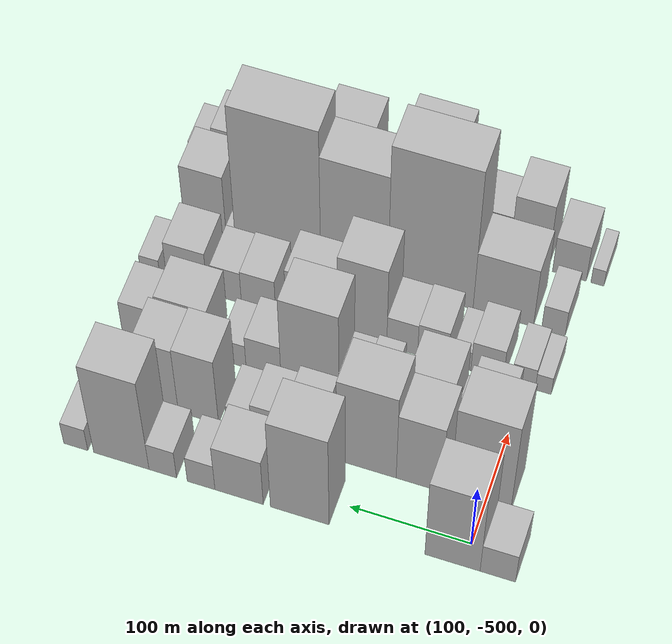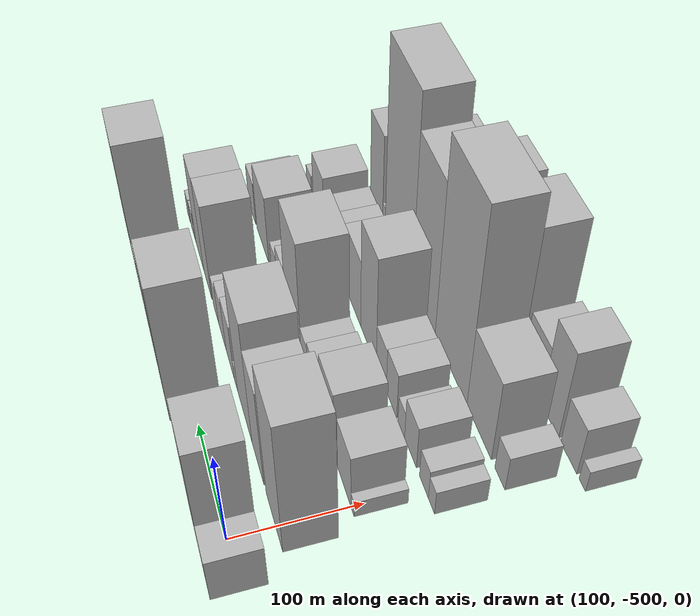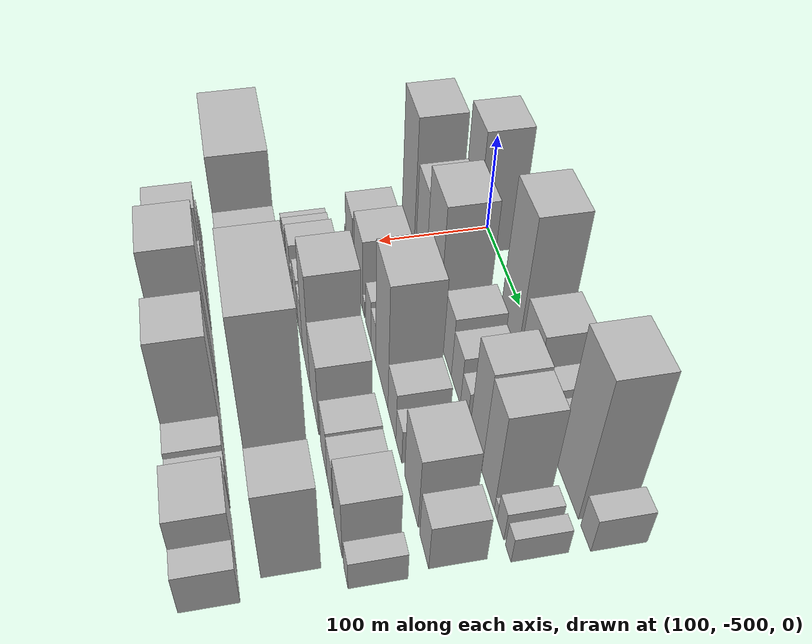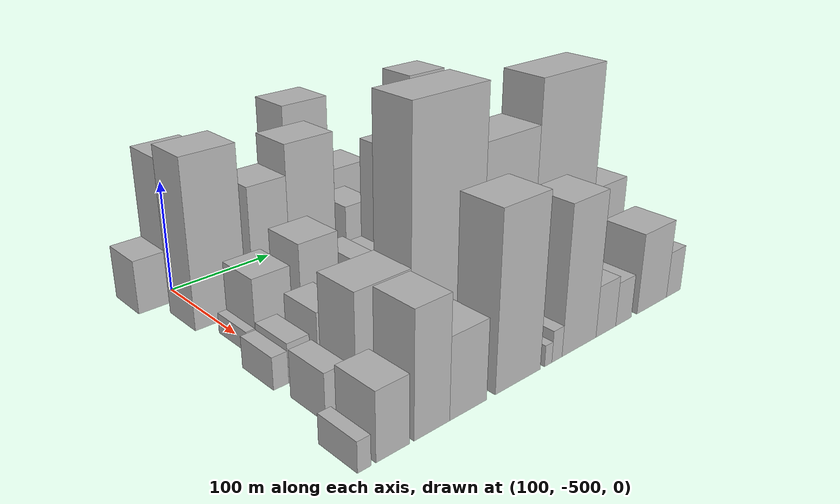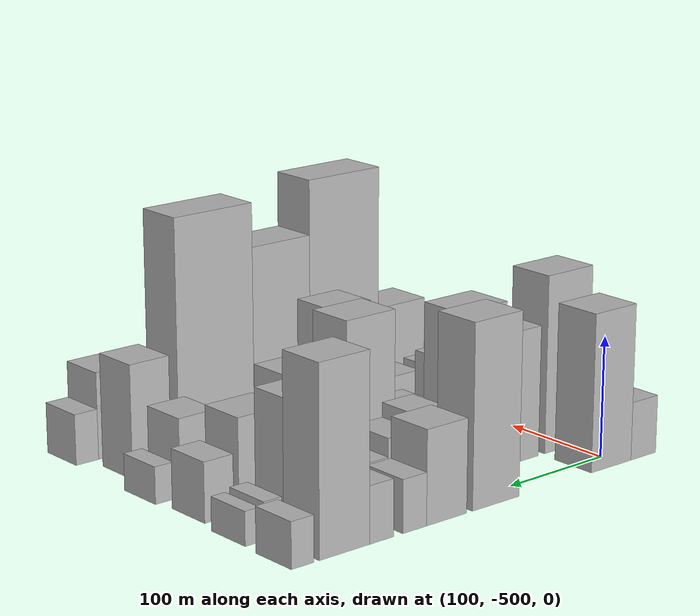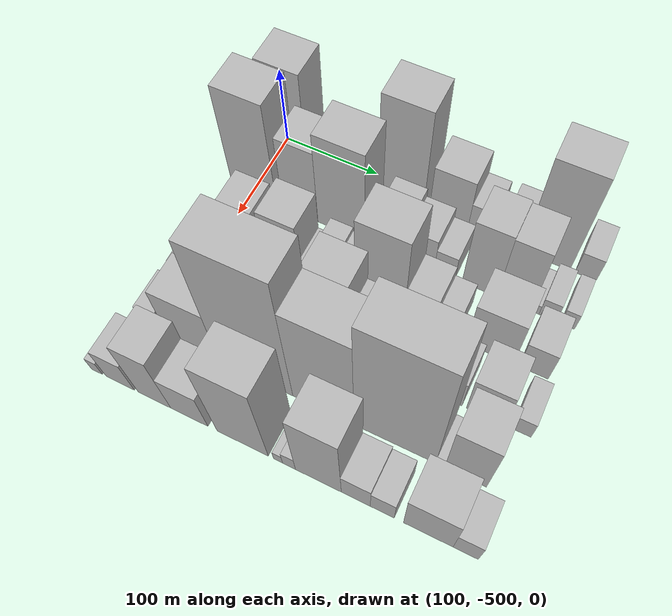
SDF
<sdf version="1.6">
 <world name="default">
  <model name="building_10">
   <static>1</static>
   <pose>100.0000 -527.2935 0 0.000000 0.000000 0.000000</pose>
   <link name="link">
    <pose>0 0 24.00 0 0 0</pose>
    <collision name="collision"><geometry><box><size>40.0000 28.6470 48.0000</size></box></geometry></collision>
    <visual name="visual">
     <cast_shadows>0</cast_shadows>
     <geometry><box><size>40.0000 28.6470 48.0000</size></box></geometry>
     <material>
      <script>
       <uri>model://HANNAS_wall/materials/scripts</uri>
       <uri>model://HANNAS_wall/materials/textures</uri>
       <name>vrc/HANNAS_wall</name>
      </script>
     </material>
    </visual>
   </link>
  </model>
  <model name="building_11">
   <static>1</static>
   <pose>100.0000 -490.5533 0 0.000000 0.000000 0.000000</pose>
   <link name="link">
    <pose>0 0 64.50 0 0 0</pose>
    <collision name="collision"><geometry><box><size>40.0000 44.8334 129.0000</size></box></geometry></collision>
    <visual name="visual">
     <cast_shadows>0</cast_shadows>
     <geometry><box><size>40.0000 44.8334 129.0000</size></box></geometry>
     <material>
      <script>
       <uri>model://HANNAS_wall/materials/scripts</uri>
       <uri>model://HANNAS_wall/materials/textures</uri>
       <name>vrc/HANNAS_wall</name>
      </script>
     </material>
    </visual>
   </link>
  </model>
  <model name="building_12">
   <static>1</static>
   <pose>100.0000 -365.3089 0 0.000000 0.000000 0.000000</pose>
   <link name="link">
    <pose>0 0 73.50 0 0 0</pose>
    <collision name="collision"><geometry><box><size>40.0000 48.5518 147.0000</size></box></geometry></collision>
    <visual name="visual">
     <cast_shadows>0</cast_shadows>
     <geometry><box><size>40.0000 48.5518 147.0000</size></box></geometry>
     <material>
      <script>
       <uri>model://HANNAS_wall/materials/scripts</uri>
       <uri>model://HANNAS_wall/materials/textures</uri>
       <name>vrc/HANNAS_wall</name>
      </script>
     </material>
    </visual>
   </link>
  </model>
  <model name="building_13">
   <static>1</static>
   <pose>100.0000 -314.8790 0 0.000000 0.000000 0.000000</pose>
   <link name="link">
    <pose>0 0 37.50 0 0 0</pose>
    <collision name="collision"><geometry><box><size>40.0000 40.3081 75.0000</size></box></geometry></collision>
    <visual name="visual">
     <cast_shadows>0</cast_shadows>
     <geometry><box><size>40.0000 40.3081 75.0000</size></box></geometry>
     <material>
      <script>
       <uri>model://HANNAS_wall/materials/scripts</uri>
       <uri>model://HANNAS_wall/materials/textures</uri>
       <name>vrc/HANNAS_wall</name>
      </script>
     </material>
    </visual>
   </link>
  </model>
  <model name="building_14">
   <static>1</static>
   <pose>100.0000 -283.0993 0 0.000000 0.000000 0.000000</pose>
   <link name="link">
    <pose>0 0 21.00 0 0 0</pose>
    <collision name="collision"><geometry><box><size>40.0000 23.2512 42.0000</size></box></geometry></collision>
    <visual name="visual">
     <cast_shadows>0</cast_shadows>
     <geometry><box><size>40.0000 23.2512 42.0000</size></box></geometry>
     <material>
      <script>
       <uri>model://HANNAS_wall/materials/scripts</uri>
       <uri>model://HANNAS_wall/materials/textures</uri>
       <name>vrc/HANNAS_wall</name>
      </script>
     </material>
    </visual>
   </link>
  </model>
  <model name="building_15">
   <static>1</static>
   <pose>100.0000 -250.8679 0 0.000000 0.000000 0.000000</pose>
   <link name="link">
    <pose>0 0 22.50 0 0 0</pose>
    <collision name="collision"><geometry><box><size>40.0000 23.2116 45.0000</size></box></geometry></collision>
    <visual name="visual">
     <cast_shadows>0</cast_shadows>
     <geometry><box><size>40.0000 23.2116 45.0000</size></box></geometry>
     <material>
      <script>
       <uri>model://HANNAS_wall/materials/scripts</uri>
       <uri>model://HANNAS_wall/materials/textures</uri>
       <name>vrc/HANNAS_wall</name>
      </script>
     </material>
    </visual>
   </link>
  </model>
  <model name="building_16">
   <static>1</static>
   <pose>100.0000 -215.7812 0 0.000000 0.000000 0.000000</pose>
   <link name="link">
    <pose>0 0 73.50 0 0 0</pose>
    <collision name="collision"><geometry><box><size>40.0000 46.9617 147.0000</size></box></geometry></collision>
    <visual name="visual">
     <cast_shadows>0</cast_shadows>
     <geometry><box><size>40.0000 46.9617 147.0000</size></box></geometry>
     <material>
      <script>
       <uri>model://HANNAS_wall/materials/scripts</uri>
       <uri>model://HANNAS_wall/materials/textures</uri>
       <name>vrc/HANNAS_wall</name>
      </script>
     </material>
    </visual>
   </link>
  </model>
  <model name="building_17">
   <static>1</static>
   <pose>100.0000 -177.0466 0 0.000000 0.000000 0.000000</pose>
   <link name="link">
    <pose>0 0 18.00 0 0 0</pose>
    <collision name="collision"><geometry><box><size>40.0000 20.5076 36.0000</size></box></geometry></collision>
    <visual name="visual">
     <cast_shadows>0</cast_shadows>
     <geometry><box><size>40.0000 20.5076 36.0000</size></box></geometry>
     <material>
      <script>
       <uri>model://HANNAS_wall/materials/scripts</uri>
       <uri>model://HANNAS_wall/materials/textures</uri>
       <name>vrc/HANNAS_wall</name>
      </script>
     </material>
    </visual>
   </link>
  </model>
  <model name="building_66">
   <static>1</static>
   <pose>155.0000 -496.4207 0 0.000000 0.000000 0.000000</pose>
   <link name="link">
    <pose>0 0 73.50 0 0 0</pose>
    <collision name="collision"><geometry><box><size>40.0000 49.2713 147.0000</size></box></geometry></collision>
    <visual name="visual">
     <cast_shadows>0</cast_shadows>
     <geometry><box><size>40.0000 49.2713 147.0000</size></box></geometry>
     <material>
      <script>
       <uri>model://HANNAS_wall/materials/scripts</uri>
       <uri>model://HANNAS_wall/materials/textures</uri>
       <name>vrc/HANNAS_wall</name>
      </script>
     </material>
    </visual>
   </link>
  </model>
  <model name="building_67">
   <static>1</static>
   <pose>155.0000 -445.8310 0 0.000000 0.000000 0.000000</pose>
   <link name="link">
    <pose>0 0 54.00 0 0 0</pose>
    <collision name="collision"><geometry><box><size>40.0000 37.9080 108.0000</size></box></geometry></collision>
    <visual name="visual">
     <cast_shadows>0</cast_shadows>
     <geometry><box><size>40.0000 37.9080 108.0000</size></box></geometry>
     <material>
      <script>
       <uri>model://HANNAS_wall/materials/scripts</uri>
       <uri>model://HANNAS_wall/materials/textures</uri>
       <name>vrc/HANNAS_wall</name>
      </script>
     </material>
    </visual>
   </link>
  </model>
  <model name="building_68">
   <static>1</static>
   <pose>155.0000 -402.1438 0 0.000000 0.000000 0.000000</pose>
   <link name="link">
    <pose>0 0 67.50 0 0 0</pose>
    <collision name="collision"><geometry><box><size>40.0000 49.4666 135.0000</size></box></geometry></collision>
    <visual name="visual">
     <cast_shadows>0</cast_shadows>
     <geometry><box><size>40.0000 49.4666 135.0000</size></box></geometry>
     <material>
      <script>
       <uri>model://HANNAS_wall/materials/scripts</uri>
       <uri>model://HANNAS_wall/materials/textures</uri>
       <name>vrc/HANNAS_wall</name>
      </script>
     </material>
    </visual>
   </link>
  </model>
  <model name="building_69">
   <static>1</static>
   <pose>155.0000 -371.6300 0 0.000000 0.000000 0.000000</pose>
   <link name="link">
    <pose>0 0 12.00 0 0 0</pose>
    <collision name="collision"><geometry><box><size>40.0000 11.5610 24.0000</size></box></geometry></collision>
    <visual name="visual">
     <cast_shadows>0</cast_shadows>
     <geometry><box><size>40.0000 11.5610 24.0000</size></box></geometry>
     <material>
      <script>
       <uri>model://HANNAS_wall/materials/scripts</uri>
       <uri>model://HANNAS_wall/materials/textures</uri>
       <name>vrc/HANNAS_wall</name>
      </script>
     </material>
    </visual>
   </link>
  </model>
  <model name="building_70">
   <static>1</static>
   <pose>155.0000 -350.0865 0 0.000000 0.000000 0.000000</pose>
   <link name="link">
    <pose>0 0 31.50 0 0 0</pose>
    <collision name="collision"><geometry><box><size>40.0000 31.5260 63.0000</size></box></geometry></collision>
    <visual name="visual">
     <cast_shadows>0</cast_shadows>
     <geometry><box><size>40.0000 31.5260 63.0000</size></box></geometry>
     <material>
      <script>
       <uri>model://HANNAS_wall/materials/scripts</uri>
       <uri>model://HANNAS_wall/materials/textures</uri>
       <name>vrc/HANNAS_wall</name>
      </script>
     </material>
    </visual>
   </link>
  </model>
  <model name="building_71">
   <static>1</static>
   <pose>155.0000 -319.9891 0 0.000000 0.000000 0.000000</pose>
   <link name="link">
    <pose>0 0 25.50 0 0 0</pose>
    <collision name="collision"><geometry><box><size>40.0000 28.6688 51.0000</size></box></geometry></collision>
    <visual name="visual">
     <cast_shadows>0</cast_shadows>
     <geometry><box><size>40.0000 28.6688 51.0000</size></box></geometry>
     <material>
      <script>
       <uri>model://HANNAS_wall/materials/scripts</uri>
       <uri>model://HANNAS_wall/materials/textures</uri>
       <name>vrc/HANNAS_wall</name>
      </script>
     </material>
    </visual>
   </link>
  </model>
  <model name="building_72">
   <static>1</static>
   <pose>155.0000 -295.2236 0 0.000000 0.000000 0.000000</pose>
   <link name="link">
    <pose>0 0 18.00 0 0 0</pose>
    <collision name="collision"><geometry><box><size>40.0000 20.8623 36.0000</size></box></geometry></collision>
    <visual name="visual">
     <cast_shadows>0</cast_shadows>
     <geometry><box><size>40.0000 20.8623 36.0000</size></box></geometry>
     <material>
      <script>
       <uri>model://HANNAS_wall/materials/scripts</uri>
       <uri>model://HANNAS_wall/materials/textures</uri>
       <name>vrc/HANNAS_wall</name>
      </script>
     </material>
    </visual>
   </link>
  </model>
  <model name="building_73">
   <static>1</static>
   <pose>155.0000 -260.6465 0 0.000000 0.000000 0.000000</pose>
   <link name="link">
    <pose>0 0 52.50 0 0 0</pose>
    <collision name="collision"><geometry><box><size>40.0000 34.2919 105.0000</size></box></geometry></collision>
    <visual name="visual">
     <cast_shadows>0</cast_shadows>
     <geometry><box><size>40.0000 34.2919 105.0000</size></box></geometry>
     <material>
      <script>
       <uri>model://HANNAS_wall/materials/scripts</uri>
       <uri>model://HANNAS_wall/materials/textures</uri>
       <name>vrc/HANNAS_wall</name>
      </script>
     </material>
    </visual>
   </link>
  </model>
  <model name="building_74">
   <static>1</static>
   <pose>155.0000 -226.7951 0 0.000000 0.000000 0.000000</pose>
   <link name="link">
    <pose>0 0 51.00 0 0 0</pose>
    <collision name="collision"><geometry><box><size>40.0000 33.4109 102.0000</size></box></geometry></collision>
    <visual name="visual">
     <cast_shadows>0</cast_shadows>
     <geometry><box><size>40.0000 33.4109 102.0000</size></box></geometry>
     <material>
      <script>
       <uri>model://HANNAS_wall/materials/scripts</uri>
       <uri>model://HANNAS_wall/materials/textures</uri>
       <name>vrc/HANNAS_wall</name>
      </script>
     </material>
    </visual>
   </link>
  </model>
  <model name="building_75">
   <static>1</static>
   <pose>155.0000 -206.3739 0 0.000000 0.000000 0.000000</pose>
   <link name="link">
    <pose>0 0 7.50 0 0 0</pose>
    <collision name="collision"><geometry><box><size>40.0000 7.4315 15.0000</size></box></geometry></collision>
    <visual name="visual">
     <cast_shadows>0</cast_shadows>
     <geometry><box><size>40.0000 7.4315 15.0000</size></box></geometry>
     <material>
      <script>
       <uri>model://HANNAS_wall/materials/scripts</uri>
       <uri>model://HANNAS_wall/materials/textures</uri>
       <name>vrc/HANNAS_wall</name>
      </script>
     </material>
    </visual>
   </link>
  </model>
  <model name="building_76">
   <static>1</static>
   <pose>155.0000 -194.3846 0 0.000000 0.000000 0.000000</pose>
   <link name="link">
    <pose>0 0 15.00 0 0 0</pose>
    <collision name="collision"><geometry><box><size>40.0000 16.5471 30.0000</size></box></geometry></collision>
    <visual name="visual">
     <cast_shadows>0</cast_shadows>
     <geometry><box><size>40.0000 16.5471 30.0000</size></box></geometry>
     <material>
      <script>
       <uri>model://HANNAS_wall/materials/scripts</uri>
       <uri>model://HANNAS_wall/materials/textures</uri>
       <name>vrc/HANNAS_wall</name>
      </script>
     </material>
    </visual>
   </link>
  </model>
  <model name="building_77">
   <static>1</static>
   <pose>155.0000 -175.4875 0 0.000000 0.000000 0.000000</pose>
   <link name="link">
    <pose>0 0 13.50 0 0 0</pose>
    <collision name="collision"><geometry><box><size>40.0000 13.2470 27.0000</size></box></geometry></collision>
    <visual name="visual">
     <cast_shadows>0</cast_shadows>
     <geometry><box><size>40.0000 13.2470 27.0000</size></box></geometry>
     <material>
      <script>
       <uri>model://HANNAS_wall/materials/scripts</uri>
       <uri>model://HANNAS_wall/materials/textures</uri>
       <name>vrc/HANNAS_wall</name>
      </script>
     </material>
    </visual>
   </link>
  </model>
  <model name="building_114">
   <static>1</static>
   <pose>210.0000 -504.2558 0 0.000000 0.000000 0.000000</pose>
   <link name="link">
    <pose>0 0 9.00 0 0 0</pose>
    <collision name="collision"><geometry><box><size>40.0000 8.2460 18.0000</size></box></geometry></collision>
    <visual name="visual">
     <cast_shadows>0</cast_shadows>
     <geometry><box><size>40.0000 8.2460 18.0000</size></box></geometry>
     <material>
      <script>
       <uri>model://HANNAS_wall/materials/scripts</uri>
       <uri>model://HANNAS_wall/materials/textures</uri>
       <name>vrc/HANNAS_wall</name>
      </script>
     </material>
    </visual>
   </link>
  </model>
  <model name="building_115">
   <static>1</static>
   <pose>210.0000 -482.6817 0 0.000000 0.000000 0.000000</pose>
   <link name="link">
    <pose>0 0 30.00 0 0 0</pose>
    <collision name="collision"><geometry><box><size>40.0000 34.9023 60.0000</size></box></geometry></collision>
    <visual name="visual">
     <cast_shadows>0</cast_shadows>
     <geometry><box><size>40.0000 34.9023 60.0000</size></box></geometry>
     <material>
      <script>
       <uri>model://HANNAS_wall/materials/scripts</uri>
       <uri>model://HANNAS_wall/materials/textures</uri>
       <name>vrc/HANNAS_wall</name>
      </script>
     </material>
    </visual>
   </link>
  </model>
  <model name="building_116">
   <static>1</static>
   <pose>210.0000 -460.8261 0 0.000000 0.000000 0.000000</pose>
   <link name="link">
    <pose>0 0 10.50 0 0 0</pose>
    <collision name="collision"><geometry><box><size>40.0000 8.8088 21.0000</size></box></geometry></collision>
    <visual name="visual">
     <cast_shadows>0</cast_shadows>
     <geometry><box><size>40.0000 8.8088 21.0000</size></box></geometry>
     <material>
      <script>
       <uri>model://HANNAS_wall/materials/scripts</uri>
       <uri>model://HANNAS_wall/materials/textures</uri>
       <name>vrc/HANNAS_wall</name>
      </script>
     </material>
    </visual>
   </link>
  </model>
  <model name="building_117">
   <static>1</static>
   <pose>210.0000 -437.1897 0 0.000000 0.000000 0.000000</pose>
   <link name="link">
    <pose>0 0 37.50 0 0 0</pose>
    <collision name="collision"><geometry><box><size>40.0000 38.4639 75.0000</size></box></geometry></collision>
    <visual name="visual">
     <cast_shadows>0</cast_shadows>
     <geometry><box><size>40.0000 38.4639 75.0000</size></box></geometry>
     <material>
      <script>
       <uri>model://HANNAS_wall/materials/scripts</uri>
       <uri>model://HANNAS_wall/materials/textures</uri>
       <name>vrc/HANNAS_wall</name>
      </script>
     </material>
    </visual>
   </link>
  </model>
  <model name="building_118">
   <static>1</static>
   <pose>210.0000 -413.5424 0 0.000000 0.000000 0.000000</pose>
   <link name="link">
    <pose>0 0 9.00 0 0 0</pose>
    <collision name="collision"><geometry><box><size>40.0000 8.8306 18.0000</size></box></geometry></collision>
    <visual name="visual">
     <cast_shadows>0</cast_shadows>
     <geometry><box><size>40.0000 8.8306 18.0000</size></box></geometry>
     <material>
      <script>
       <uri>model://HANNAS_wall/materials/scripts</uri>
       <uri>model://HANNAS_wall/materials/textures</uri>
       <name>vrc/HANNAS_wall</name>
      </script>
     </material>
    </visual>
   </link>
  </model>
  <model name="building_119">
   <static>1</static>
   <pose>210.0000 -392.7704 0 0.000000 0.000000 0.000000</pose>
   <link name="link">
    <pose>0 0 22.50 0 0 0</pose>
    <collision name="collision"><geometry><box><size>40.0000 22.7132 45.0000</size></box></geometry></collision>
    <visual name="visual">
     <cast_shadows>0</cast_shadows>
     <geometry><box><size>40.0000 22.7132 45.0000</size></box></geometry>
     <material>
      <script>
       <uri>model://HANNAS_wall/materials/scripts</uri>
       <uri>model://HANNAS_wall/materials/textures</uri>
       <name>vrc/HANNAS_wall</name>
      </script>
     </material>
    </visual>
   </link>
  </model>
  <model name="building_120">
   <static>1</static>
   <pose>210.0000 -371.0163 0 0.000000 0.000000 0.000000</pose>
   <link name="link">
    <pose>0 0 19.50 0 0 0</pose>
    <collision name="collision"><geometry><box><size>40.0000 20.7950 39.0000</size></box></geometry></collision>
    <visual name="visual">
     <cast_shadows>0</cast_shadows>
     <geometry><box><size>40.0000 20.7950 39.0000</size></box></geometry>
     <material>
      <script>
       <uri>model://HANNAS_wall/materials/scripts</uri>
       <uri>model://HANNAS_wall/materials/textures</uri>
       <name>vrc/HANNAS_wall</name>
      </script>
     </material>
    </visual>
   </link>
  </model>
  <model name="building_121">
   <static>1</static>
   <pose>210.0000 -335.9780 0 0.000000 0.000000 0.000000</pose>
   <link name="link">
    <pose>0 0 64.50 0 0 0</pose>
    <collision name="collision"><geometry><box><size>40.0000 49.2816 129.0000</size></box></geometry></collision>
    <visual name="visual">
     <cast_shadows>0</cast_shadows>
     <geometry><box><size>40.0000 49.2816 129.0000</size></box></geometry>
     <material>
      <script>
       <uri>model://HANNAS_wall/materials/scripts</uri>
       <uri>model://HANNAS_wall/materials/textures</uri>
       <name>vrc/HANNAS_wall</name>
      </script>
     </material>
    </visual>
   </link>
  </model>
  <model name="building_122">
   <static>1</static>
   <pose>210.0000 -296.3959 0 0.000000 0.000000 0.000000</pose>
   <link name="link">
    <pose>0 0 25.50 0 0 0</pose>
    <collision name="collision"><geometry><box><size>40.0000 29.8825 51.0000</size></box></geometry></collision>
    <visual name="visual">
     <cast_shadows>0</cast_shadows>
     <geometry><box><size>40.0000 29.8825 51.0000</size></box></geometry>
     <material>
      <script>
       <uri>model://HANNAS_wall/materials/scripts</uri>
       <uri>model://HANNAS_wall/materials/textures</uri>
       <name>vrc/HANNAS_wall</name>
      </script>
     </material>
    </visual>
   </link>
  </model>
  <model name="building_123">
   <static>1</static>
   <pose>210.0000 -271.0802 0 0.000000 0.000000 0.000000</pose>
   <link name="link">
    <pose>0 0 18.00 0 0 0</pose>
    <collision name="collision"><geometry><box><size>40.0000 20.7490 36.0000</size></box></geometry></collision>
    <visual name="visual">
     <cast_shadows>0</cast_shadows>
     <geometry><box><size>40.0000 20.7490 36.0000</size></box></geometry>
     <material>
      <script>
       <uri>model://HANNAS_wall/materials/scripts</uri>
       <uri>model://HANNAS_wall/materials/textures</uri>
       <name>vrc/HANNAS_wall</name>
      </script>
     </material>
    </visual>
   </link>
  </model>
  <model name="building_124">
   <static>1</static>
   <pose>210.0000 -228.4498 0 0.000000 0.000000 0.000000</pose>
   <link name="link">
    <pose>0 0 37.50 0 0 0</pose>
    <collision name="collision"><geometry><box><size>40.0000 44.5117 75.0000</size></box></geometry></collision>
    <visual name="visual">
     <cast_shadows>0</cast_shadows>
     <geometry><box><size>40.0000 44.5117 75.0000</size></box></geometry>
     <material>
      <script>
       <uri>model://HANNAS_wall/materials/scripts</uri>
       <uri>model://HANNAS_wall/materials/textures</uri>
       <name>vrc/HANNAS_wall</name>
      </script>
     </material>
    </visual>
   </link>
  </model>
  <model name="building_125">
   <static>1</static>
   <pose>210.0000 -187.6544 0 0.000000 0.000000 0.000000</pose>
   <link name="link">
    <pose>0 0 24.00 0 0 0</pose>
    <collision name="collision"><geometry><box><size>40.0000 27.0791 48.0000</size></box></geometry></collision>
    <visual name="visual">
     <cast_shadows>0</cast_shadows>
     <geometry><box><size>40.0000 27.0791 48.0000</size></box></geometry>
     <material>
      <script>
       <uri>model://HANNAS_wall/materials/scripts</uri>
       <uri>model://HANNAS_wall/materials/textures</uri>
       <name>vrc/HANNAS_wall</name>
      </script>
     </material>
    </visual>
   </link>
  </model>
  <model name="building_166">
   <static>1</static>
   <pose>265.0000 -515.6329 0 0.000000 0.000000 0.000000</pose>
   <link name="link">
    <pose>0 0 13.50 0 0 0</pose>
    <collision name="collision"><geometry><box><size>40.0000 13.4063 27.0000</size></box></geometry></collision>
    <visual name="visual">
     <cast_shadows>0</cast_shadows>
     <geometry><box><size>40.0000 13.4063 27.0000</size></box></geometry>
     <material>
      <script>
       <uri>model://HANNAS_wall/materials/scripts</uri>
       <uri>model://HANNAS_wall/materials/textures</uri>
       <name>vrc/HANNAS_wall</name>
      </script>
     </material>
    </visual>
   </link>
  </model>
  <model name="building_167">
   <static>1</static>
   <pose>265.0000 -499.0594 0 0.000000 0.000000 0.000000</pose>
   <link name="link">
    <pose>0 0 16.50 0 0 0</pose>
    <collision name="collision"><geometry><box><size>40.0000 19.7409 33.0000</size></box></geometry></collision>
    <visual name="visual">
     <cast_shadows>0</cast_shadows>
     <geometry><box><size>40.0000 19.7409 33.0000</size></box></geometry>
     <material>
      <script>
       <uri>model://HANNAS_wall/materials/scripts</uri>
       <uri>model://HANNAS_wall/materials/textures</uri>
       <name>vrc/HANNAS_wall</name>
      </script>
     </material>
    </visual>
   </link>
  </model>
  <model name="building_168">
   <static>1</static>
   <pose>265.0000 -468.4308 0 0.000000 0.000000 0.000000</pose>
   <link name="link">
    <pose>0 0 24.00 0 0 0</pose>
    <collision name="collision"><geometry><box><size>40.0000 27.5163 48.0000</size></box></geometry></collision>
    <visual name="visual">
     <cast_shadows>0</cast_shadows>
     <geometry><box><size>40.0000 27.5163 48.0000</size></box></geometry>
     <material>
      <script>
       <uri>model://HANNAS_wall/materials/scripts</uri>
       <uri>model://HANNAS_wall/materials/textures</uri>
       <name>vrc/HANNAS_wall</name>
      </script>
     </material>
    </visual>
   </link>
  </model>
  <model name="building_169">
   <static>1</static>
   <pose>265.0000 -446.6884 0 0.000000 0.000000 0.000000</pose>
   <link name="link">
    <pose>0 0 15.00 0 0 0</pose>
    <collision name="collision"><geometry><box><size>40.0000 15.9685 30.0000</size></box></geometry></collision>
    <visual name="visual">
     <cast_shadows>0</cast_shadows>
     <geometry><box><size>40.0000 15.9685 30.0000</size></box></geometry>
     <material>
      <script>
       <uri>model://HANNAS_wall/materials/scripts</uri>
       <uri>model://HANNAS_wall/materials/textures</uri>
       <name>vrc/HANNAS_wall</name>
      </script>
     </material>
    </visual>
   </link>
  </model>
  <model name="building_170">
   <static>1</static>
   <pose>265.0000 -422.5773 0 0.000000 0.000000 0.000000</pose>
   <link name="link">
    <pose>0 0 25.50 0 0 0</pose>
    <collision name="collision"><geometry><box><size>40.0000 26.2536 51.0000</size></box></geometry></collision>
    <visual name="visual">
     <cast_shadows>0</cast_shadows>
     <geometry><box><size>40.0000 26.2536 51.0000</size></box></geometry>
     <material>
      <script>
       <uri>model://HANNAS_wall/materials/scripts</uri>
       <uri>model://HANNAS_wall/materials/textures</uri>
       <name>vrc/HANNAS_wall</name>
      </script>
     </material>
    </visual>
   </link>
  </model>
  <model name="building_171">
   <static>1</static>
   <pose>265.0000 -396.2969 0 0.000000 0.000000 0.000000</pose>
   <link name="link">
    <pose>0 0 24.00 0 0 0</pose>
    <collision name="collision"><geometry><box><size>40.0000 26.3074 48.0000</size></box></geometry></collision>
    <visual name="visual">
     <cast_shadows>0</cast_shadows>
     <geometry><box><size>40.0000 26.3074 48.0000</size></box></geometry>
     <material>
      <script>
       <uri>model://HANNAS_wall/materials/scripts</uri>
       <uri>model://HANNAS_wall/materials/textures</uri>
       <name>vrc/HANNAS_wall</name>
      </script>
     </material>
    </visual>
   </link>
  </model>
  <model name="building_172">
   <static>1</static>
   <pose>265.0000 -362.0886 0 0.000000 0.000000 0.000000</pose>
   <link name="link">
    <pose>0 0 60.00 0 0 0</pose>
    <collision name="collision"><geometry><box><size>40.0000 42.1091 120.0000</size></box></geometry></collision>
    <visual name="visual">
     <cast_shadows>0</cast_shadows>
     <geometry><box><size>40.0000 42.1091 120.0000</size></box></geometry>
     <material>
      <script>
       <uri>model://HANNAS_wall/materials/scripts</uri>
       <uri>model://HANNAS_wall/materials/textures</uri>
       <name>vrc/HANNAS_wall</name>
      </script>
     </material>
    </visual>
   </link>
  </model>
  <model name="building_173">
   <static>1</static>
   <pose>265.0000 -318.7486 0 0.000000 0.000000 0.000000</pose>
   <link name="link">
    <pose>0 0 37.50 0 0 0</pose>
    <collision name="collision"><geometry><box><size>40.0000 44.5710 75.0000</size></box></geometry></collision>
    <visual name="visual">
     <cast_shadows>0</cast_shadows>
     <geometry><box><size>40.0000 44.5710 75.0000</size></box></geometry>
     <material>
      <script>
       <uri>model://HANNAS_wall/materials/scripts</uri>
       <uri>model://HANNAS_wall/materials/textures</uri>
       <name>vrc/HANNAS_wall</name>
      </script>
     </material>
    </visual>
   </link>
  </model>
  <model name="building_174">
   <static>1</static>
   <pose>265.0000 -272.6235 0 0.000000 0.000000 0.000000</pose>
   <link name="link">
    <pose>0 0 25.50 0 0 0</pose>
    <collision name="collision"><geometry><box><size>40.0000 29.6791 51.0000</size></box></geometry></collision>
    <visual name="visual">
     <cast_shadows>0</cast_shadows>
     <geometry><box><size>40.0000 29.6791 51.0000</size></box></geometry>
     <material>
      <script>
       <uri>model://HANNAS_wall/materials/scripts</uri>
       <uri>model://HANNAS_wall/materials/textures</uri>
       <name>vrc/HANNAS_wall</name>
      </script>
     </material>
    </visual>
   </link>
  </model>
  <model name="building_175">
   <static>1</static>
   <pose>265.0000 -244.9234 0 0.000000 0.000000 0.000000</pose>
   <link name="link">
    <pose>0 0 24.00 0 0 0</pose>
    <collision name="collision"><geometry><box><size>40.0000 25.7212 48.0000</size></box></geometry></collision>
    <visual name="visual">
     <cast_shadows>0</cast_shadows>
     <geometry><box><size>40.0000 25.7212 48.0000</size></box></geometry>
     <material>
      <script>
       <uri>model://HANNAS_wall/materials/scripts</uri>
       <uri>model://HANNAS_wall/materials/textures</uri>
       <name>vrc/HANNAS_wall</name>
      </script>
     </material>
    </visual>
   </link>
  </model>
  <model name="building_176">
   <static>1</static>
   <pose>265.0000 -210.3490 0 0.000000 0.000000 0.000000</pose>
   <link name="link">
    <pose>0 0 31.50 0 0 0</pose>
    <collision name="collision"><geometry><box><size>40.0000 35.4276 63.0000</size></box></geometry></collision>
    <visual name="visual">
     <cast_shadows>0</cast_shadows>
     <geometry><box><size>40.0000 35.4276 63.0000</size></box></geometry>
     <material>
      <script>
       <uri>model://HANNAS_wall/materials/scripts</uri>
       <uri>model://HANNAS_wall/materials/textures</uri>
       <name>vrc/HANNAS_wall</name>
      </script>
     </material>
    </visual>
   </link>
  </model>
  <model name="building_177">
   <static>1</static>
   <pose>265.0000 -178.0831 0 0.000000 0.000000 0.000000</pose>
   <link name="link">
    <pose>0 0 15.00 0 0 0</pose>
    <collision name="collision"><geometry><box><size>40.0000 17.1041 30.0000</size></box></geometry></collision>
    <visual name="visual">
     <cast_shadows>0</cast_shadows>
     <geometry><box><size>40.0000 17.1041 30.0000</size></box></geometry>
     <material>
      <script>
       <uri>model://HANNAS_wall/materials/scripts</uri>
       <uri>model://HANNAS_wall/materials/textures</uri>
       <name>vrc/HANNAS_wall</name>
      </script>
     </material>
    </visual>
   </link>
  </model>
  <model name="building_222">
   <static>1</static>
   <pose>320.0000 -508.0908 0 0.000000 0.000000 0.000000</pose>
   <link name="link">
    <pose>0 0 19.50 0 0 0</pose>
    <collision name="collision"><geometry><box><size>40.0000 20.0113 39.0000</size></box></geometry></collision>
    <visual name="visual">
     <cast_shadows>0</cast_shadows>
     <geometry><box><size>40.0000 20.0113 39.0000</size></box></geometry>
     <material>
      <script>
       <uri>model://HANNAS_wall/materials/scripts</uri>
       <uri>model://HANNAS_wall/materials/textures</uri>
       <name>vrc/HANNAS_wall</name>
      </script>
     </material>
    </visual>
   </link>
  </model>
  <model name="building_223">
   <static>1</static>
   <pose>320.0000 -465.3262 0 0.000000 0.000000 0.000000</pose>
   <link name="link">
    <pose>0 0 45.00 0 0 0</pose>
    <collision name="collision"><geometry><box><size>40.0000 51.5178 90.0000</size></box></geometry></collision>
    <visual name="visual">
     <cast_shadows>0</cast_shadows>
     <geometry><box><size>40.0000 51.5178 90.0000</size></box></geometry>
     <material>
      <script>
       <uri>model://HANNAS_wall/materials/scripts</uri>
       <uri>model://HANNAS_wall/materials/textures</uri>
       <name>vrc/HANNAS_wall</name>
      </script>
     </material>
    </visual>
   </link>
  </model>
  <model name="building_224">
   <static>1</static>
   <pose>320.0000 -402.8478 0 0.000000 0.000000 0.000000</pose>
   <link name="link">
    <pose>0 0 105.00 0 0 0</pose>
    <collision name="collision"><geometry><box><size>40.0000 73.4390 210.0000</size></box></geometry></collision>
    <visual name="visual">
     <cast_shadows>0</cast_shadows>
     <geometry><box><size>40.0000 73.4390 210.0000</size></box></geometry>
     <material>
      <script>
       <uri>model://HANNAS_wall/materials/scripts</uri>
       <uri>model://HANNAS_wall/materials/textures</uri>
       <name>vrc/HANNAS_wall</name>
      </script>
     </material>
    </visual>
   </link>
  </model>
  <model name="building_225">
   <static>1</static>
   <pose>320.0000 -336.9917 0 0.000000 0.000000 0.000000</pose>
   <link name="link">
    <pose>0 0 82.50 0 0 0</pose>
    <collision name="collision"><geometry><box><size>40.0000 58.2732 165.0000</size></box></geometry></collision>
    <visual name="visual">
     <cast_shadows>0</cast_shadows>
     <geometry><box><size>40.0000 58.2732 165.0000</size></box></geometry>
     <material>
      <script>
       <uri>model://HANNAS_wall/materials/scripts</uri>
       <uri>model://HANNAS_wall/materials/textures</uri>
       <name>vrc/HANNAS_wall</name>
      </script>
     </material>
    </visual>
   </link>
  </model>
  <model name="building_226">
   <static>1</static>
   <pose>320.0000 -270.2323 0 0.000000 0.000000 0.000000</pose>
   <link name="link">
    <pose>0 0 100.50 0 0 0</pose>
    <collision name="collision"><geometry><box><size>40.0000 75.2456 201.0000</size></box></geometry></collision>
    <visual name="visual">
     <cast_shadows>0</cast_shadows>
     <geometry><box><size>40.0000 75.2456 201.0000</size></box></geometry>
     <material>
      <script>
       <uri>model://HANNAS_wall/materials/scripts</uri>
       <uri>model://HANNAS_wall/materials/textures</uri>
       <name>vrc/HANNAS_wall</name>
      </script>
     </material>
    </visual>
   </link>
  </model>
  <model name="building_227">
   <static>1</static>
   <pose>320.0000 -228.6794 0 0.000000 0.000000 0.000000</pose>
   <link name="link">
    <pose>0 0 9.00 0 0 0</pose>
    <collision name="collision"><geometry><box><size>40.0000 7.8602 18.0000</size></box></geometry></collision>
    <visual name="visual">
     <cast_shadows>0</cast_shadows>
     <geometry><box><size>40.0000 7.8602 18.0000</size></box></geometry>
     <material>
      <script>
       <uri>model://HANNAS_wall/materials/scripts</uri>
       <uri>model://HANNAS_wall/materials/textures</uri>
       <name>vrc/HANNAS_wall</name>
      </script>
     </material>
    </visual>
   </link>
  </model>
  <model name="building_228">
   <static>1</static>
   <pose>320.0000 -206.2473 0 0.000000 0.000000 0.000000</pose>
   <link name="link">
    <pose>0 0 46.50 0 0 0</pose>
    <collision name="collision"><geometry><box><size>40.0000 37.0041 93.0000</size></box></geometry></collision>
    <visual name="visual">
     <cast_shadows>0</cast_shadows>
     <geometry><box><size>40.0000 37.0041 93.0000</size></box></geometry>
     <material>
      <script>
       <uri>model://HANNAS_wall/materials/scripts</uri>
       <uri>model://HANNAS_wall/materials/textures</uri>
       <name>vrc/HANNAS_wall</name>
      </script>
     </material>
    </visual>
   </link>
  </model>
  <model name="building_271">
   <static>1</static>
   <pose>375.0000 -529.9291 0 0.000000 0.000000 0.000000</pose>
   <link name="link">
    <pose>0 0 12.00 0 0 0</pose>
    <collision name="collision"><geometry><box><size>40.0000 11.1698 24.0000</size></box></geometry></collision>
    <visual name="visual">
     <cast_shadows>0</cast_shadows>
     <geometry><box><size>40.0000 11.1698 24.0000</size></box></geometry>
     <material>
      <script>
       <uri>model://HANNAS_wall/materials/scripts</uri>
       <uri>model://HANNAS_wall/materials/textures</uri>
       <name>vrc/HANNAS_wall</name>
      </script>
     </material>
    </visual>
   </link>
  </model>
  <model name="building_272">
   <static>1</static>
   <pose>375.0000 -505.8459 0 0.000000 0.000000 0.000000</pose>
   <link name="link">
    <pose>0 0 27.00 0 0 0</pose>
    <collision name="collision"><geometry><box><size>40.0000 28.9966 54.0000</size></box></geometry></collision>
    <visual name="visual">
     <cast_shadows>0</cast_shadows>
     <geometry><box><size>40.0000 28.9966 54.0000</size></box></geometry>
     <material>
      <script>
       <uri>model://HANNAS_wall/materials/scripts</uri>
       <uri>model://HANNAS_wall/materials/textures</uri>
       <name>vrc/HANNAS_wall</name>
      </script>
     </material>
    </visual>
   </link>
  </model>
  <model name="building_273">
   <static>1</static>
   <pose>375.0000 -470.8540 0 0.000000 0.000000 0.000000</pose>
   <link name="link">
    <pose>0 0 49.50 0 0 0</pose>
    <collision name="collision"><geometry><box><size>40.0000 32.9873 99.0000</size></box></geometry></collision>
    <visual name="visual">
     <cast_shadows>0</cast_shadows>
     <geometry><box><size>40.0000 32.9873 99.0000</size></box></geometry>
     <material>
      <script>
       <uri>model://HANNAS_wall/materials/scripts</uri>
       <uri>model://HANNAS_wall/materials/textures</uri>
       <name>vrc/HANNAS_wall</name>
      </script>
     </material>
    </visual>
   </link>
  </model>
  <model name="building_274">
   <static>1</static>
   <pose>375.0000 -436.0719 0 0.000000 0.000000 0.000000</pose>
   <link name="link">
    <pose>0 0 33.00 0 0 0</pose>
    <collision name="collision"><geometry><box><size>40.0000 36.5768 66.0000</size></box></geometry></collision>
    <visual name="visual">
     <cast_shadows>0</cast_shadows>
     <geometry><box><size>40.0000 36.5768 66.0000</size></box></geometry>
     <material>
      <script>
       <uri>model://HANNAS_wall/materials/scripts</uri>
       <uri>model://HANNAS_wall/materials/textures</uri>
       <name>vrc/HANNAS_wall</name>
      </script>
     </material>
    </visual>
   </link>
  </model>
  <model name="building_275">
   <static>1</static>
   <pose>375.0000 -384.2632 0 0.000000 0.000000 0.000000</pose>
   <link name="link">
    <pose>0 0 72.00 0 0 0</pose>
    <collision name="collision"><geometry><box><size>40.0000 49.0407 144.0000</size></box></geometry></collision>
    <visual name="visual">
     <cast_shadows>0</cast_shadows>
     <geometry><box><size>40.0000 49.0407 144.0000</size></box></geometry>
     <material>
      <script>
       <uri>model://HANNAS_wall/materials/scripts</uri>
       <uri>model://HANNAS_wall/materials/textures</uri>
       <name>vrc/HANNAS_wall</name>
      </script>
     </material>
    </visual>
   </link>
  </model>
  <model name="building_276">
   <static>1</static>
   <pose>375.0000 -350.4948 0 0.000000 0.000000 0.000000</pose>
   <link name="link">
    <pose>0 0 9.00 0 0 0</pose>
    <collision name="collision"><geometry><box><size>40.0000 8.4960 18.0000</size></box></geometry></collision>
    <visual name="visual">
     <cast_shadows>0</cast_shadows>
     <geometry><box><size>40.0000 8.4960 18.0000</size></box></geometry>
     <material>
      <script>
       <uri>model://HANNAS_wall/materials/scripts</uri>
       <uri>model://HANNAS_wall/materials/textures</uri>
       <name>vrc/HANNAS_wall</name>
      </script>
     </material>
    </visual>
   </link>
  </model>
  <model name="building_277">
   <static>1</static>
   <pose>375.0000 -340.2466 0 0.000000 0.000000 0.000000</pose>
   <link name="link">
    <pose>0 0 13.50 0 0 0</pose>
    <collision name="collision"><geometry><box><size>40.0000 12.0004 27.0000</size></box></geometry></collision>
    <visual name="visual">
     <cast_shadows>0</cast_shadows>
     <geometry><box><size>40.0000 12.0004 27.0000</size></box></geometry>
     <material>
      <script>
       <uri>model://HANNAS_wall/materials/scripts</uri>
       <uri>model://HANNAS_wall/materials/textures</uri>
       <name>vrc/HANNAS_wall</name>
      </script>
     </material>
    </visual>
   </link>
  </model>
  <model name="building_278">
   <static>1</static>
   <pose>375.0000 -313.2195 0 0.000000 0.000000 0.000000</pose>
   <link name="link">
    <pose>0 0 63.00 0 0 0</pose>
    <collision name="collision"><geometry><box><size>40.0000 42.0537 126.0000</size></box></geometry></collision>
    <visual name="visual">
     <cast_shadows>0</cast_shadows>
     <geometry><box><size>40.0000 42.0537 126.0000</size></box></geometry>
     <material>
      <script>
       <uri>model://HANNAS_wall/materials/scripts</uri>
       <uri>model://HANNAS_wall/materials/textures</uri>
       <name>vrc/HANNAS_wall</name>
      </script>
     </material>
    </visual>
   </link>
  </model>
  <model name="building_279">
   <static>1</static>
   <pose>375.0000 -279.2117 0 0.000000 0.000000 0.000000</pose>
   <link name="link">
    <pose>0 0 22.50 0 0 0</pose>
    <collision name="collision"><geometry><box><size>40.0000 25.9618 45.0000</size></box></geometry></collision>
    <visual name="visual">
     <cast_shadows>0</cast_shadows>
     <geometry><box><size>40.0000 25.9618 45.0000</size></box></geometry>
     <material>
      <script>
       <uri>model://HANNAS_wall/materials/scripts</uri>
       <uri>model://HANNAS_wall/materials/textures</uri>
       <name>vrc/HANNAS_wall</name>
      </script>
     </material>
    </visual>
   </link>
  </model>
  <model name="building_280">
   <static>1</static>
   <pose>375.0000 -255.5845 0 0.000000 0.000000 0.000000</pose>
   <link name="link">
    <pose>0 0 19.50 0 0 0</pose>
    <collision name="collision"><geometry><box><size>40.0000 21.2926 39.0000</size></box></geometry></collision>
    <visual name="visual">
     <cast_shadows>0</cast_shadows>
     <geometry><box><size>40.0000 21.2926 39.0000</size></box></geometry>
     <material>
      <script>
       <uri>model://HANNAS_wall/materials/scripts</uri>
       <uri>model://HANNAS_wall/materials/textures</uri>
       <name>vrc/HANNAS_wall</name>
      </script>
     </material>
    </visual>
   </link>
  </model>
  <model name="building_281">
   <static>1</static>
   <pose>375.0000 -215.4731 0 0.000000 0.000000 0.000000</pose>
   <link name="link">
    <pose>0 0 36.00 0 0 0</pose>
    <collision name="collision"><geometry><box><size>40.0000 42.9303 72.0000</size></box></geometry></collision>
    <visual name="visual">
     <cast_shadows>0</cast_shadows>
     <geometry><box><size>40.0000 42.9303 72.0000</size></box></geometry>
     <material>
      <script>
       <uri>model://HANNAS_wall/materials/scripts</uri>
       <uri>model://HANNAS_wall/materials/textures</uri>
       <name>vrc/HANNAS_wall</name>
      </script>
     </material>
    </visual>
   </link>
  </model>
  <model name="building_282">
   <static>1</static>
   <pose>375.0000 -183.3485 0 0.000000 0.000000 0.000000</pose>
   <link name="link">
    <pose>0 0 21.00 0 0 0</pose>
    <collision name="collision"><geometry><box><size>40.0000 21.3188 42.0000</size></box></geometry></collision>
    <visual name="visual">
     <cast_shadows>0</cast_shadows>
     <geometry><box><size>40.0000 21.3188 42.0000</size></box></geometry>
     <material>
      <script>
       <uri>model://HANNAS_wall/materials/scripts</uri>
       <uri>model://HANNAS_wall/materials/textures</uri>
       <name>vrc/HANNAS_wall</name>
      </script>
     </material>
    </visual>
   </link>
  </model>
 </world>
</sdf>
